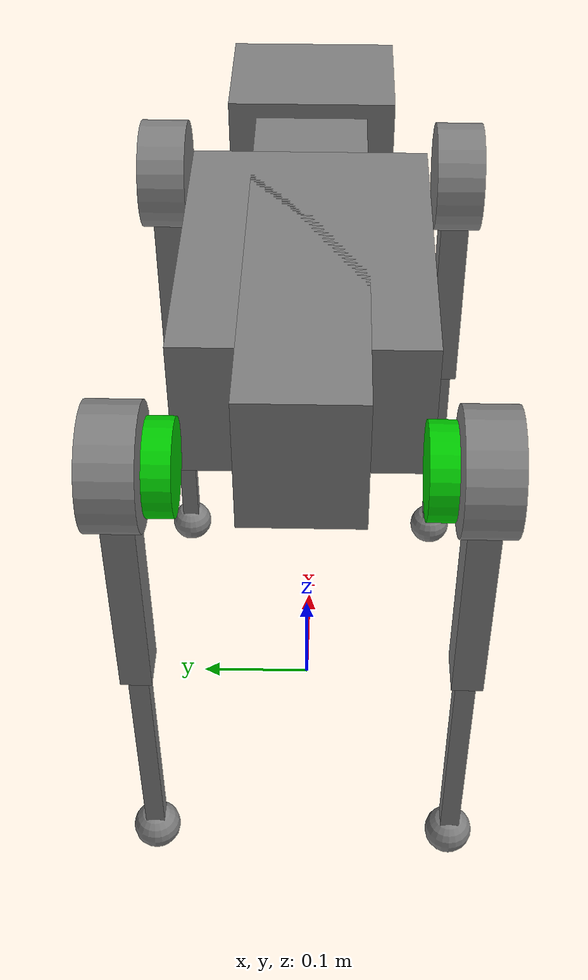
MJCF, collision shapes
<mujoco model="go1">
  <compiler angle="radian" meshdir="assets/"/>

  <option cone="elliptic" impratio="100" />

  <default>
    <default class="go1">
      <geom friction="0.4" margin="0.001" condim="1"/>
      <joint axis="0 1 0" damping="0.1" armature="0.01" frictionloss="0.2"/>
      <motor ctrlrange="-23.7 23.7"/>
      <default class="abduction">
        <joint axis="1 0 0" range="-1.0472 1.0472"/>
      </default>
      <default class="hip">
        <default class="front_hip">
          <joint range="-1.5708 3.4907"/>
        </default>
        <default class="back_hip">
          <joint range="-0.5236 4.5379"/>
        </default>
      </default>
      <default class="knee">
        <joint range="-2.7227 -0.83776"/>
        <motor ctrlrange="-45.43 45.43"/>
      </default>
      <default class="visual">
        <geom type="mesh" contype="0" conaffinity="0" group="2"/>
      </default>
      <default class="collision">
        <geom group="3"/>
        <default class="foot">
          <geom size="0.022" pos="-0.002 0 -0.213" priority="1" condim="6"
            friction="0.4 0.02 0.01"/>
        </default>
      </default>
    </default>
  </default>

  <asset>
    <mesh name="trunk" file="trunk.obj" scale="0.0001 0.0001 0.0001"/>
    <mesh name="hip" file="hip.obj" scale="0.001 0.001 0.001"/>
    <mesh name="thigh_mirror" file="thigh_mirror.obj" scale="0.001 0.001 0.001"/>
    <mesh name="calf" file="calf.obj" scale="0.001 0.001 0.001"/>
    <mesh name="thigh" file="thigh.obj" scale="0.001 0.001 0.001"/>
    <mesh name="depthCamera" file="depthCamera.obj" scale="0.001 0.001 0.001"/>
    <mesh name="ultraSound" file="ultraSound.obj" scale="0.001 0.001 0.001"/>
  </asset>

  <worldbody>
    <body name="base_link" pos="0 0 0.445" childclass="go1">
      <inertial pos="0.021112 0 -0.005366" quat="-0.000543471 0.713435 -0.00173769 0.700719"
        mass="6.921"
        diaginertia="0.107027 0.0980771 0.0244531" />
      <freejoint />
      <geom type="mesh" mesh="trunk" class="visual" />
      <geom size="0.1881 0.04675 0.057" type="box" class="collision" />
      <geom size="0.13 0.095 0.057" type="box" class="collision" />
      <geom size="0.055 0.07 0.065" pos="0.24 0 0.005" type="box" class="collision" />
      <geom pos="0.2785 0.0125 0.0167" quat="0 1 0 0" type="mesh" mesh="depthCamera" class="visual" />
      <geom pos="0.2522 0.0125 -0.0436" quat="0 0.707107 0 -0.707107" type="mesh" mesh="depthCamera" class="visual" />
      <geom pos="-0.066 0.082 -0.0176" quat="0.0922962 0.701057 0.701057 -0.0922962" type="mesh" mesh="depthCamera" class="visual" />
      <geom pos="-0.041 -0.082 -0.0176" quat="-0.0922962 0.701057 -0.701057 -0.0922962" type="mesh" mesh="depthCamera" class="visual" />
      <geom pos="-0.0825 0.0125 -0.04365" quat="0 0.707107 0 -0.707107" type="mesh" mesh="depthCamera" class="visual" />
      <geom pos="-0.0535 0.0826 0.00868" quat="0.701057 -0.0922962 0.0922962 0.701057" type="mesh" rgba="0 0 0 1" mesh="ultraSound" class="visual" />
      <geom pos="-0.0535 -0.0826 0.00868" quat="0.701057 0.0922962 0.0922962 -0.701057" type="mesh" rgba="0 0 0 1" mesh="ultraSound" class="visual" />
      <geom pos="0.2747 0 -0.0088" quat="1 0 0 0" type="mesh" rgba="0 0 0 1" mesh="ultraSound" class="visual" />
      <site name="imu" pos="-0.02557 0 0.04232" />
      <body name="FL_hip" pos="0.1881 0.04675 0">
      <inertial pos="-0.0049166 -0.00762615 -8.865e-05" quat="0.482891 0.495027 0.514169 0.507341" mass="0.68" diaginertia="0.000734064 0.000468438 0.000398719"/>
        <joint name="FL_hip_joint" class="abduction" />
        <geom type="mesh" mesh="hip" class="visual" />
        <geom size="0.046 0.02" pos="0 0.08 0" quat="0.707107 0.707107 0 0" type="cylinder" class="collision" />
        <body name="FL_thigh" pos="0 0.08 0">
          <inertial pos="-0.00304722 -0.019315 -0.0305004" quat="0.753383 0.0775126 -0.0272313 0.65243" mass="1.009" diaginertia="0.00478717 0.00460903 0.000709268"/>
          <joint name="FL_thigh_joint" class="front_hip" />
          <geom type="mesh" mesh="thigh" class="visual" />
          <geom size="0.1065 0.01225 0.017" pos="0 0 -0.1065" quat="0.707107 0 0.707107 0" type="box" class="collision" />
          <body name="FL_calf" pos="0 0 -0.213">
            <inertial pos="0.00429862 0.000976676 -0.146197" quat="0.691246 0.00357467 0.00511118 0.722592" mass="0.195862" diaginertia="0.00149767 0.00148468 3.58427e-05"/>
            <joint name="FL_calf_joint" class="knee" />
            <geom type="mesh" mesh="calf" class="visual" />
            <geom size="0.1065 0.008 0.008" pos="0 0 -0.1065" quat="0.707107 0 0.707107 0" type="box" class="collision" />
            <geom size="0.01" pos="0 0 -0.213" contype="0" conaffinity="0" group="2" density="0"/>
            <geom size="0.02" pos="0 0 -0.213"/>
          </body>
        </body>
      </body>
    <body name="FR_hip" pos="0.1881 -0.04675 0">
      <inertial pos="-0.0049166 0.00762615 -8.865e-05" quat="0.507341 0.514169 0.495027 0.482891"
        mass="0.68"
        diaginertia="0.000734064 0.000468438 0.000398719"/>
      <joint name="FR_hip_joint" class="abduction" />
      <geom pos="0 0 0" quat="0 1 0 0" type="mesh" mesh="hip" class="visual" />
      <geom size="0.046 0.02" pos="0 -0.08 0" quat="0.707107 0.707107 0 0" type="cylinder" class="collision" />
      <body name="FR_thigh" pos="0 -0.08 0">
        <inertial pos="-0.00304722 0.019315 -0.0305004" quat="0.65243 -0.0272313 0.0775126 0.753383" mass="1.009" diaginertia="0.00478717 0.00460903 0.000709268"/>
        <joint name="FR_thigh_joint" class="front_hip" />
        <geom type="mesh" mesh="thigh_mirror" class="visual" />
        <geom size="0.1065 0.01225 0.017" pos="0 0 -0.1065" quat="0.707107 0 0.707107 0" type="box" class="collision" />
        <body name="FR_calf" pos="0 0 -0.213">
          <inertial pos="0.00429862 0.000976676 -0.146197" quat="0.691246 0.00357467 0.00511118 0.722592" mass="0.195862" diaginertia="0.00149767 0.00148468 3.58427e-05"/>
          <joint name="FR_calf_joint" class="knee" />
          <geom type="mesh" mesh="calf" class="visual" />
          <geom size="0.1065 0.008 0.008" pos="0 0 -0.1065" quat="0.707107 0 0.707107 0" type="box" class="collision" />
          <geom size="0.01" pos="0 0 -0.213" contype="0" conaffinity="0" group="2" density="0"/>
          <geom size="0.02" pos="0 0 -0.213"/>
        </body>
      </body>
    </body>
    <body name="RL_hip" pos="-0.1881 0.04675 0">
      <inertial pos="0.0049166 -0.00762615 -8.865e-05" quat="0.514169 0.507341 0.482891 0.495027" mass="0.68" diaginertia="0.000734064 0.000468438 0.000398719"/>
      <joint name="RL_hip_joint" class="abduction" />
      <geom pos="0 0 0" quat="0 0 1 0" type="mesh" mesh="hip" class="visual" />
      <geom size="0.046 0.02" pos="0 0.08 0" quat="0.707107 0.707107 0 0" type="cylinder" class="collision" />
      <body name="RL_thigh" pos="0 0.08 0">
        <inertial pos="-0.00304722 -0.019315 -0.0305004" quat="0.753383 0.0775126 -0.0272313 0.65243" mass="1.009" diaginertia="0.00478717 0.00460903 0.000709268"/>
        <joint name="RL_thigh_joint" class="back_hip" />
        <geom type="mesh" mesh="thigh" class="visual"/>
        <geom size="0.1065 0.01225 0.017" pos="0 0 -0.1065" quat="0.707107 0 0.707107 0" type="box" class="collision" />
        <geom size="0.035 0.01" pos="0 -0.03235 0" quat="0.707107 0.707107 0 0" type="cylinder" contype="0" conaffinity="0" group="2" density="0" rgba="0 0.8 0 1"/>
        <geom size="0.035 0.01" pos="0 -0.03235 0" quat="0.707107 0.707107 0 0" type="cylinder" rgba="0 0.8 0 1"/>
        <body name="RL_calf" pos="0 0 -0.213">
          <inertial pos="0.00429862 0.000976676 -0.146197" quat="0.691246 0.00357467 0.00511118 0.722592" mass="0.195862" diaginertia="0.00149767 0.00148468 3.58427e-05"/>
          <joint name="RL_calf_joint" class="knee" />
          <geom type="mesh"  mesh="calf" class="visual"/>
          <geom size="0.1065 0.008 0.008" pos="0 0 -0.1065" quat="0.707107 0 0.707107 0" type="box" class="collision" />
          <geom size="0.01" pos="0 0 -0.213" contype="0" conaffinity="0" group="2" density="0"/>
          <geom size="0.02" pos="0 0 -0.213"/>
        </body>
      </body>
    </body>
    <body name="RR_hip" pos="-0.1881 -0.04675 0">
      <inertial pos="0.0049166 0.00762615 -8.865e-05" quat="0.495027 0.482891 0.507341 0.514169" mass="0.68" diaginertia="0.000734064 0.000468438 0.000398719"/>
      <joint name="RR_hip_joint" class="abduction" />
      <geom pos="0 0 0" quat="0 0 0 -1" type="mesh" mesh="hip" class="visual" />
      <geom size="0.046 0.02" pos="0 -0.08 0" quat="0.707107 0.707107 0 0" type="cylinder" class="collision"/>
      <body name="RR_thigh" pos="0 -0.08 0">
        <inertial pos="-0.00304722 0.019315 -0.0305004" quat="0.65243 -0.0272313 0.0775126 0.753383" mass="1.009" diaginertia="0.00478717 0.00460903 0.000709268"/>
        <joint name="RR_thigh_joint" class="back_hip" />
        <geom type="mesh" mesh="thigh_mirror" class="visual" />
        <geom size="0.1065 0.01225 0.017" pos="0 0 -0.1065" quat="0.707107 0 0.707107 0" type="box" class="collision" />
        <geom size="0.035 0.01" pos="0 0.03235 0" quat="0.707107 0.707107 0 0" type="cylinder" contype="0" conaffinity="0" group="2" density="0" rgba="0 0.8 0 1"/>
        <geom size="0.035 0.01" pos="0 0.03235 0" quat="0.707107 0.707107 0 0" type="cylinder" rgba="0 0.8 0 1"/>
        <body name="RR_calf" pos="0 0 -0.213">
          <inertial pos="0.00429862 0.000976676 -0.146197" quat="0.691246 0.00357467 0.00511118 0.722592" mass="0.195862" diaginertia="0.00149767 0.00148468 3.58427e-05"/>
          <joint name="RR_calf_joint" class="knee" />
          <geom type="mesh" mesh="calf" class="visual" />
          <geom size="0.1065 0.008 0.008" pos="0 0 -0.1065" quat="0.707107 0 0.707107 0" type="box" class="collision" />
          <geom size="0.01" pos="0 0 -0.213" contype="0" conaffinity="0" group="2" density="0"/>
          <geom size="0.02" pos="0 0 -0.213"/>
        </body>
      </body>
    </body>
    </body>
  </worldbody>

  <actuator>
    <motor class="abduction" name="FR_hip" joint="FR_hip_joint" />
    <motor class="hip" name="FR_thigh" joint="FR_thigh_joint" />
    <motor class="knee" name="FR_calf" joint="FR_calf_joint" />
    <motor class="abduction" name="FL_hip" joint="FL_hip_joint" />
    <motor class="hip" name="FL_thigh" joint="FL_thigh_joint" />
    <motor class="knee" name="FL_calf" joint="FL_calf_joint" />
    <motor class="abduction" name="RR_hip" joint="RR_hip_joint" />
    <motor class="hip" name="RR_thigh" joint="RR_thigh_joint" />
    <motor class="knee" name="RR_calf" joint="RR_calf_joint" />
    <motor class="abduction" name="RL_hip" joint="RL_hip_joint" />
    <motor class="hip" name="RL_thigh" joint="RL_thigh_joint" />
    <motor class="knee" name="RL_calf" joint="RL_calf_joint" />
  </actuator>

  <sensor>
    <jointpos name="FR_hip_pos" joint="FR_hip_joint" />
    <jointpos name="FR_thigh_pos" joint="FR_thigh_joint" />
    <jointpos name="FR_calf_pos" joint="FR_calf_joint" />
    <jointpos name="FL_hip_pos" joint="FL_hip_joint" />
    <jointpos name="FL_thigh_pos" joint="FL_thigh_joint" />
    <jointpos name="FL_calf_pos" joint="FL_calf_joint" />
    <jointpos name="RR_hip_pos" joint="RR_hip_joint" />
    <jointpos name="RR_thigh_pos" joint="RR_thigh_joint" />
    <jointpos name="RR_calf_pos" joint="RR_calf_joint" />
    <jointpos name="RL_hip_pos" joint="RL_hip_joint" />
    <jointpos name="RL_thigh_pos" joint="RL_thigh_joint" />
    <jointpos name="RL_calf_pos" joint="RL_calf_joint" />

    <jointvel name="FR_hip_vel" joint="FR_hip_joint" />
    <jointvel name="FR_thigh_vel" joint="FR_thigh_joint" />
    <jointvel name="FR_calf_vel" joint="FR_calf_joint" />
    <jointvel name="FL_hip_vel" joint="FL_hip_joint" />
    <jointvel name="FL_thigh_vel" joint="FL_thigh_joint" />
    <jointvel name="FL_calf_vel" joint="FL_calf_joint" />
    <jointvel name="RR_hip_vel" joint="RR_hip_joint" />
    <jointvel name="RR_thigh_vel" joint="RR_thigh_joint" />
    <jointvel name="RR_calf_vel" joint="RR_calf_joint" />
    <jointvel name="RL_hip_vel" joint="RL_hip_joint" />
    <jointvel name="RL_thigh_vel" joint="RL_thigh_joint" />
    <jointvel name="RL_calf_vel" joint="RL_calf_joint" />

    <jointactuatorfrc name="FR_hip_torque" joint="FR_hip_joint" noise="0.01" />
    <jointactuatorfrc name="FR_thigh_torque" joint="FR_thigh_joint" noise="0.01" />
    <jointactuatorfrc name="FR_calf_torque" joint="FR_calf_joint" noise="0.01" />
    <jointactuatorfrc name="FL_hip_torque" joint="FL_hip_joint" noise="0.01" />
    <jointactuatorfrc name="FL_thigh_torque" joint="FL_thigh_joint" noise="0.01" />
    <jointactuatorfrc name="FL_calf_torque" joint="FL_calf_joint" noise="0.01" />
    <jointactuatorfrc name="RR_hip_torque" joint="RR_hip_joint" noise="0.01" />
    <jointactuatorfrc name="RR_thigh_torque" joint="RR_thigh_joint" noise="0.01" />
    <jointactuatorfrc name="RR_calf_torque" joint="RR_calf_joint" noise="0.01" />
    <jointactuatorfrc name="RL_hip_torque" joint="RL_hip_joint" noise="0.01" />
    <jointactuatorfrc name="RL_thigh_torque" joint="RL_thigh_joint" noise="0.01" />
    <jointactuatorfrc name="RL_calf_torque" joint="RL_calf_joint" noise="0.01" />

    <framequat name="imu_quat" objtype="site" objname="imu" />
    <gyro name="imu_gyro" site="imu" />
    <accelerometer name="imu_acc" site="imu" />

    <framepos name="frame_pos" objtype="site" objname="imu" />
    <framelinvel name="frame_vel" objtype="site" objname="imu" />
  </sensor>

  <keyframe>
    <key name="home" qpos="0 0 0.27 1 0 0 0 0 0.9 -1.8 0 0.9 -1.8 0 0.9 -1.8 0 0.9 -1.8"
      ctrl="0 0.9 -1.8 0 0.9 -1.8 0 0.9 -1.8 0 0.9 -1.8" />
  </keyframe>
</mujoco>
